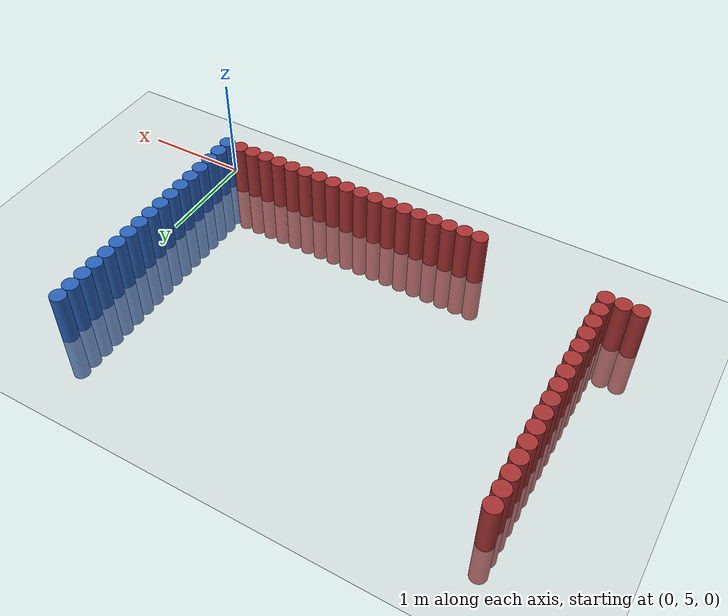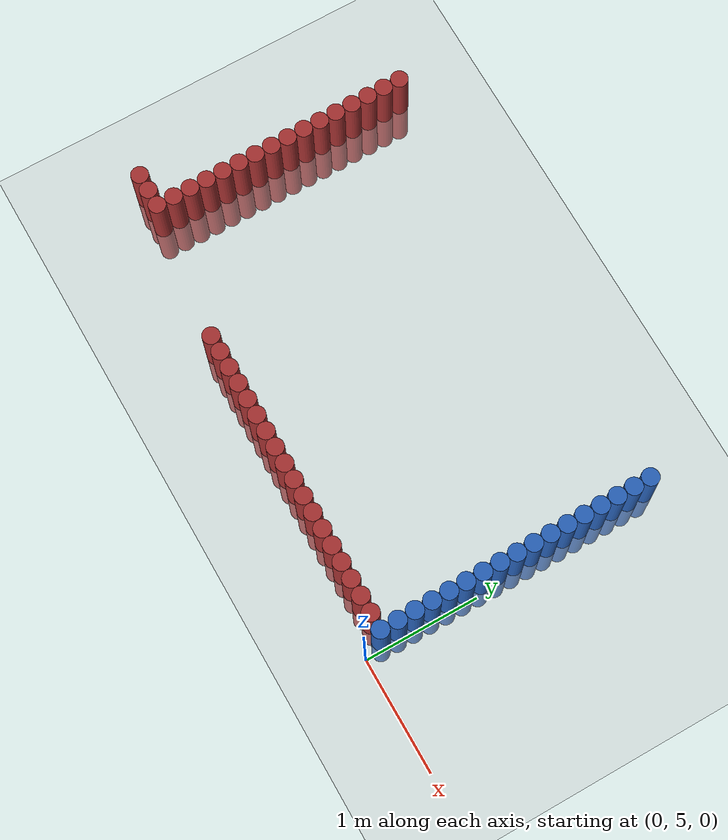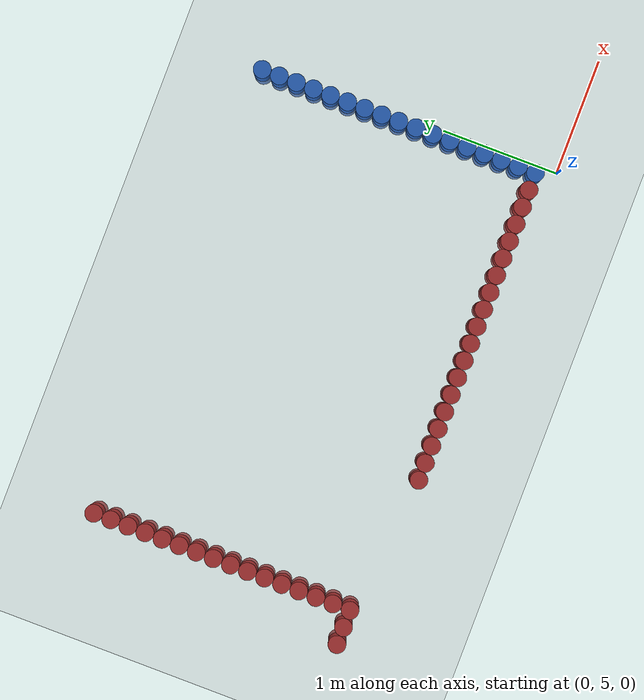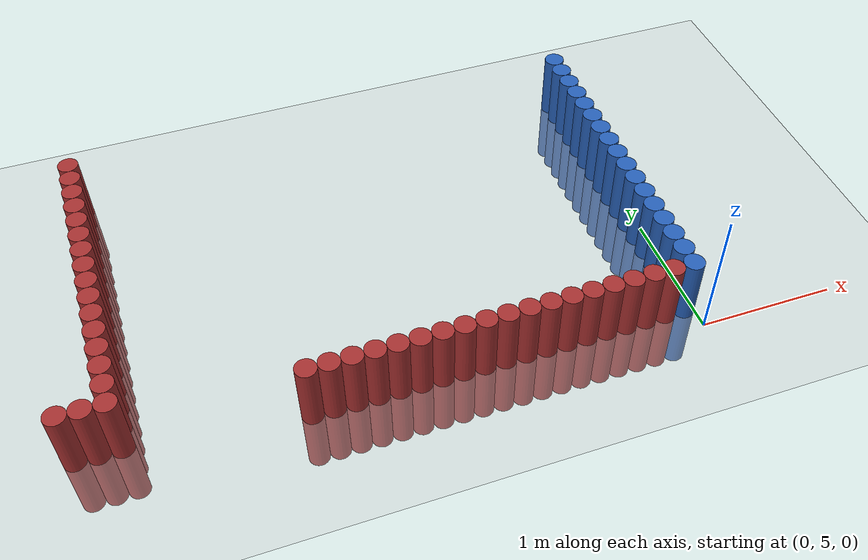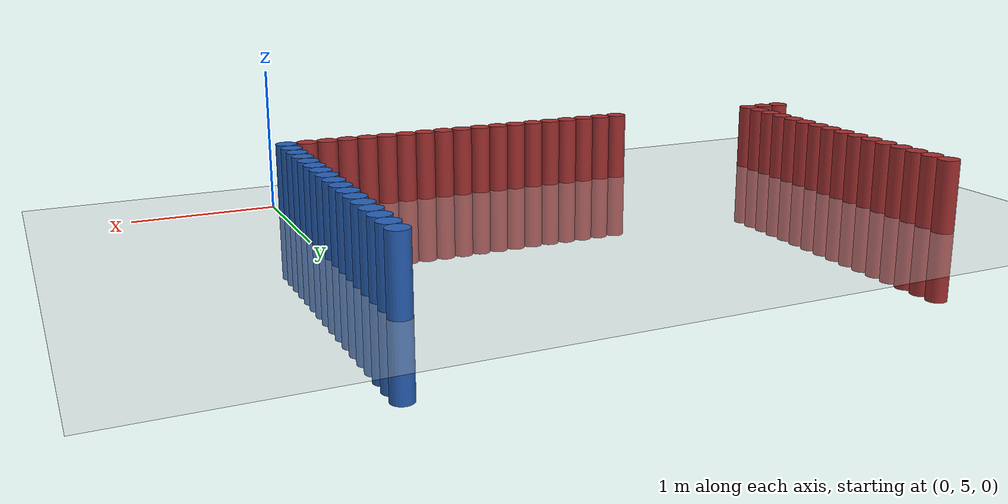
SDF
<sdf version="1.6">
 <world name="default">
  <model name="ground_plane">
   <static>1</static>
   <link name="link">
    <collision name="collision">
     <geometry><plane><normal>0 0 1</normal><size>100 100</size></plane></geometry>
     <surface><friction><ode><mu>100</mu><mu2>50</mu2></ode></friction></surface>
    </collision>
    <visual name="visual">
     <cast_shadows>0</cast_shadows>
     <geometry><plane><normal>0 0 1</normal><size>100 100</size></plane></geometry>
     <material>
      <script><uri>file://media/materials/scripts/gazebo.material</uri><name>Gazebo/Grey</name></script>
     </material>
    </visual>
   </link>
  </model>
  <model name="unit_cylinder_266">
   <static>1</static>
   <pose>-4.275000 5.325000 0.000000 0.000000 0.000000 0.000000</pose>
   <link name="link">
    <inertial>
     <mass>1</mass>
     <inertia><ixx>0.145833</ixx><ixy>0</ixy><ixz>0</ixz><iyy>0.145833</iyy><iyz>0</iyz><izz>0.125</izz></inertia>
    </inertial>
    <collision name="collision">
     <geometry><cylinder><radius>0.075000</radius><length>1</length></cylinder></geometry>
    </collision>
    <visual name="visual">
     <geometry><cylinder><radius>0.075000</radius><length>1</length></cylinder></geometry>
     <material>
      <ambient>0.648000 0.192000 0.192000 1</ambient>
      <diffuse>0.648000 0.192000 0.192000 1</diffuse>
     </material>
     <material>
      <script><name>Gazebo/Grey</name><uri>file://media/materials/scripts/gazebo.material</uri></script>
     </material>
    </visual>
   </link>
  </model>
  <model name="unit_cylinder_270">
   <static>1</static>
   <pose>-4.125000 5.325000 0.000000 0.000000 0.000000 0.000000</pose>
   <link name="link">
    <inertial>
     <mass>1</mass>
     <inertia><ixx>0.145833</ixx><ixy>0</ixy><ixz>0</ixz><iyy>0.145833</iyy><iyz>0</iyz><izz>0.125</izz></inertia>
    </inertial>
    <collision name="collision">
     <geometry><cylinder><radius>0.075000</radius><length>1</length></cylinder></geometry>
    </collision>
    <visual name="visual">
     <geometry><cylinder><radius>0.075000</radius><length>1</length></cylinder></geometry>
     <material>
      <ambient>0.648000 0.192000 0.192000 1</ambient>
      <diffuse>0.648000 0.192000 0.192000 1</diffuse>
     </material>
     <material>
      <script><name>Gazebo/Grey</name><uri>file://media/materials/scripts/gazebo.material</uri></script>
     </material>
    </visual>
   </link>
  </model>
  <model name="unit_cylinder_274">
   <static>1</static>
   <pose>-3.975000 5.325000 0.000000 0.000000 0.000000 0.000000</pose>
   <link name="link">
    <inertial>
     <mass>1</mass>
     <inertia><ixx>0.145833</ixx><ixy>0</ixy><ixz>0</ixz><iyy>0.145833</iyy><iyz>0</iyz><izz>0.125</izz></inertia>
    </inertial>
    <collision name="collision">
     <geometry><cylinder><radius>0.075000</radius><length>1</length></cylinder></geometry>
    </collision>
    <visual name="visual">
     <geometry><cylinder><radius>0.075000</radius><length>1</length></cylinder></geometry>
     <material>
      <ambient>0.648000 0.192000 0.192000 1</ambient>
      <diffuse>0.648000 0.192000 0.192000 1</diffuse>
     </material>
     <material>
      <script><name>Gazebo/Grey</name><uri>file://media/materials/scripts/gazebo.material</uri></script>
     </material>
    </visual>
   </link>
  </model>
  <model name="unit_cylinder_275">
   <static>1</static>
   <pose>-3.975000 5.475000 0.000000 0.000000 0.000000 0.000000</pose>
   <link name="link">
    <inertial>
     <mass>1</mass>
     <inertia><ixx>0.145833</ixx><ixy>0</ixy><ixz>0</ixz><iyy>0.145833</iyy><iyz>0</iyz><izz>0.125</izz></inertia>
    </inertial>
    <collision name="collision">
     <geometry><cylinder><radius>0.075000</radius><length>1</length></cylinder></geometry>
    </collision>
    <visual name="visual">
     <geometry><cylinder><radius>0.075000</radius><length>1</length></cylinder></geometry>
     <material>
      <ambient>0.648000 0.192000 0.192000 1</ambient>
      <diffuse>0.648000 0.192000 0.192000 1</diffuse>
     </material>
     <material>
      <script><name>Gazebo/Grey</name><uri>file://media/materials/scripts/gazebo.material</uri></script>
     </material>
    </visual>
   </link>
  </model>
  <model name="unit_cylinder_276">
   <static>1</static>
   <pose>-3.975000 5.625000 0.000000 0.000000 0.000000 0.000000</pose>
   <link name="link">
    <inertial>
     <mass>1</mass>
     <inertia><ixx>0.145833</ixx><ixy>0</ixy><ixz>0</ixz><iyy>0.145833</iyy><iyz>0</iyz><izz>0.125</izz></inertia>
    </inertial>
    <collision name="collision">
     <geometry><cylinder><radius>0.075000</radius><length>1</length></cylinder></geometry>
    </collision>
    <visual name="visual">
     <geometry><cylinder><radius>0.075000</radius><length>1</length></cylinder></geometry>
     <material>
      <ambient>0.648000 0.192000 0.192000 1</ambient>
      <diffuse>0.648000 0.192000 0.192000 1</diffuse>
     </material>
     <material>
      <script><name>Gazebo/Grey</name><uri>file://media/materials/scripts/gazebo.material</uri></script>
     </material>
    </visual>
   </link>
  </model>
  <model name="unit_cylinder_277">
   <static>1</static>
   <pose>-3.975000 5.775000 0.000000 0.000000 0.000000 0.000000</pose>
   <link name="link">
    <inertial>
     <mass>1</mass>
     <inertia><ixx>0.145833</ixx><ixy>0</ixy><ixz>0</ixz><iyy>0.145833</iyy><iyz>0</iyz><izz>0.125</izz></inertia>
    </inertial>
    <collision name="collision">
     <geometry><cylinder><radius>0.075000</radius><length>1</length></cylinder></geometry>
    </collision>
    <visual name="visual">
     <geometry><cylinder><radius>0.075000</radius><length>1</length></cylinder></geometry>
     <material>
      <ambient>0.648000 0.192000 0.192000 1</ambient>
      <diffuse>0.648000 0.192000 0.192000 1</diffuse>
     </material>
     <material>
      <script><name>Gazebo/Grey</name><uri>file://media/materials/scripts/gazebo.material</uri></script>
     </material>
    </visual>
   </link>
  </model>
  <model name="unit_cylinder_278">
   <static>1</static>
   <pose>-3.975000 5.925000 0.000000 0.000000 0.000000 0.000000</pose>
   <link name="link">
    <inertial>
     <mass>1</mass>
     <inertia><ixx>0.145833</ixx><ixy>0</ixy><ixz>0</ixz><iyy>0.145833</iyy><iyz>0</iyz><izz>0.125</izz></inertia>
    </inertial>
    <collision name="collision">
     <geometry><cylinder><radius>0.075000</radius><length>1</length></cylinder></geometry>
    </collision>
    <visual name="visual">
     <geometry><cylinder><radius>0.075000</radius><length>1</length></cylinder></geometry>
     <material>
      <ambient>0.648000 0.192000 0.192000 1</ambient>
      <diffuse>0.648000 0.192000 0.192000 1</diffuse>
     </material>
     <material>
      <script><name>Gazebo/Grey</name><uri>file://media/materials/scripts/gazebo.material</uri></script>
     </material>
    </visual>
   </link>
  </model>
  <model name="unit_cylinder_279">
   <static>1</static>
   <pose>-3.975000 6.075000 0.000000 0.000000 0.000000 0.000000</pose>
   <link name="link">
    <inertial>
     <mass>1</mass>
     <inertia><ixx>0.145833</ixx><ixy>0</ixy><ixz>0</ixz><iyy>0.145833</iyy><iyz>0</iyz><izz>0.125</izz></inertia>
    </inertial>
    <collision name="collision">
     <geometry><cylinder><radius>0.075000</radius><length>1</length></cylinder></geometry>
    </collision>
    <visual name="visual">
     <geometry><cylinder><radius>0.075000</radius><length>1</length></cylinder></geometry>
     <material>
      <ambient>0.648000 0.192000 0.192000 1</ambient>
      <diffuse>0.648000 0.192000 0.192000 1</diffuse>
     </material>
     <material>
      <script><name>Gazebo/Grey</name><uri>file://media/materials/scripts/gazebo.material</uri></script>
     </material>
    </visual>
   </link>
  </model>
  <model name="unit_cylinder_280">
   <static>1</static>
   <pose>-3.975000 6.225000 0.000000 0.000000 0.000000 0.000000</pose>
   <link name="link">
    <inertial>
     <mass>1</mass>
     <inertia><ixx>0.145833</ixx><ixy>0</ixy><ixz>0</ixz><iyy>0.145833</iyy><iyz>0</iyz><izz>0.125</izz></inertia>
    </inertial>
    <collision name="collision">
     <geometry><cylinder><radius>0.075000</radius><length>1</length></cylinder></geometry>
    </collision>
    <visual name="visual">
     <geometry><cylinder><radius>0.075000</radius><length>1</length></cylinder></geometry>
     <material>
      <ambient>0.648000 0.192000 0.192000 1</ambient>
      <diffuse>0.648000 0.192000 0.192000 1</diffuse>
     </material>
     <material>
      <script><name>Gazebo/Grey</name><uri>file://media/materials/scripts/gazebo.material</uri></script>
     </material>
    </visual>
   </link>
  </model>
  <model name="unit_cylinder_281">
   <static>1</static>
   <pose>-3.975000 6.375000 0.000000 0.000000 0.000000 0.000000</pose>
   <link name="link">
    <inertial>
     <mass>1</mass>
     <inertia><ixx>0.145833</ixx><ixy>0</ixy><ixz>0</ixz><iyy>0.145833</iyy><iyz>0</iyz><izz>0.125</izz></inertia>
    </inertial>
    <collision name="collision">
     <geometry><cylinder><radius>0.075000</radius><length>1</length></cylinder></geometry>
    </collision>
    <visual name="visual">
     <geometry><cylinder><radius>0.075000</radius><length>1</length></cylinder></geometry>
     <material>
      <ambient>0.648000 0.192000 0.192000 1</ambient>
      <diffuse>0.648000 0.192000 0.192000 1</diffuse>
     </material>
     <material>
      <script><name>Gazebo/Grey</name><uri>file://media/materials/scripts/gazebo.material</uri></script>
     </material>
    </visual>
   </link>
  </model>
  <model name="unit_cylinder_282">
   <static>1</static>
   <pose>-3.975000 6.525000 0.000000 0.000000 0.000000 0.000000</pose>
   <link name="link">
    <inertial>
     <mass>1</mass>
     <inertia><ixx>0.145833</ixx><ixy>0</ixy><ixz>0</ixz><iyy>0.145833</iyy><iyz>0</iyz><izz>0.125</izz></inertia>
    </inertial>
    <collision name="collision">
     <geometry><cylinder><radius>0.075000</radius><length>1</length></cylinder></geometry>
    </collision>
    <visual name="visual">
     <geometry><cylinder><radius>0.075000</radius><length>1</length></cylinder></geometry>
     <material>
      <ambient>0.648000 0.192000 0.192000 1</ambient>
      <diffuse>0.648000 0.192000 0.192000 1</diffuse>
     </material>
     <material>
      <script><name>Gazebo/Grey</name><uri>file://media/materials/scripts/gazebo.material</uri></script>
     </material>
    </visual>
   </link>
  </model>
  <model name="unit_cylinder_283">
   <static>1</static>
   <pose>-3.975000 6.675000 0.000000 0.000000 0.000000 0.000000</pose>
   <link name="link">
    <inertial>
     <mass>1</mass>
     <inertia><ixx>0.145833</ixx><ixy>0</ixy><ixz>0</ixz><iyy>0.145833</iyy><iyz>0</iyz><izz>0.125</izz></inertia>
    </inertial>
    <collision name="collision">
     <geometry><cylinder><radius>0.075000</radius><length>1</length></cylinder></geometry>
    </collision>
    <visual name="visual">
     <geometry><cylinder><radius>0.075000</radius><length>1</length></cylinder></geometry>
     <material>
      <ambient>0.648000 0.192000 0.192000 1</ambient>
      <diffuse>0.648000 0.192000 0.192000 1</diffuse>
     </material>
     <material>
      <script><name>Gazebo/Grey</name><uri>file://media/materials/scripts/gazebo.material</uri></script>
     </material>
    </visual>
   </link>
  </model>
  <model name="unit_cylinder_284">
   <static>1</static>
   <pose>-3.975000 6.825000 0.000000 0.000000 0.000000 0.000000</pose>
   <link name="link">
    <inertial>
     <mass>1</mass>
     <inertia><ixx>0.145833</ixx><ixy>0</ixy><ixz>0</ixz><iyy>0.145833</iyy><iyz>0</iyz><izz>0.125</izz></inertia>
    </inertial>
    <collision name="collision">
     <geometry><cylinder><radius>0.075000</radius><length>1</length></cylinder></geometry>
    </collision>
    <visual name="visual">
     <geometry><cylinder><radius>0.075000</radius><length>1</length></cylinder></geometry>
     <material>
      <ambient>0.648000 0.192000 0.192000 1</ambient>
      <diffuse>0.648000 0.192000 0.192000 1</diffuse>
     </material>
     <material>
      <script><name>Gazebo/Grey</name><uri>file://media/materials/scripts/gazebo.material</uri></script>
     </material>
    </visual>
   </link>
  </model>
  <model name="unit_cylinder_285">
   <static>1</static>
   <pose>-3.975000 6.975000 0.000000 0.000000 0.000000 0.000000</pose>
   <link name="link">
    <inertial>
     <mass>1</mass>
     <inertia><ixx>0.145833</ixx><ixy>0</ixy><ixz>0</ixz><iyy>0.145833</iyy><iyz>0</iyz><izz>0.125</izz></inertia>
    </inertial>
    <collision name="collision">
     <geometry><cylinder><radius>0.075000</radius><length>1</length></cylinder></geometry>
    </collision>
    <visual name="visual">
     <geometry><cylinder><radius>0.075000</radius><length>1</length></cylinder></geometry>
     <material>
      <ambient>0.648000 0.192000 0.192000 1</ambient>
      <diffuse>0.648000 0.192000 0.192000 1</diffuse>
     </material>
     <material>
      <script><name>Gazebo/Grey</name><uri>file://media/materials/scripts/gazebo.material</uri></script>
     </material>
    </visual>
   </link>
  </model>
  <model name="unit_cylinder_286">
   <static>1</static>
   <pose>-3.975000 7.125000 0.000000 0.000000 0.000000 0.000000</pose>
   <link name="link">
    <inertial>
     <mass>1</mass>
     <inertia><ixx>0.145833</ixx><ixy>0</ixy><ixz>0</ixz><iyy>0.145833</iyy><iyz>0</iyz><izz>0.125</izz></inertia>
    </inertial>
    <collision name="collision">
     <geometry><cylinder><radius>0.075000</radius><length>1</length></cylinder></geometry>
    </collision>
    <visual name="visual">
     <geometry><cylinder><radius>0.075000</radius><length>1</length></cylinder></geometry>
     <material>
      <ambient>0.648000 0.192000 0.192000 1</ambient>
      <diffuse>0.648000 0.192000 0.192000 1</diffuse>
     </material>
     <material>
      <script><name>Gazebo/Grey</name><uri>file://media/materials/scripts/gazebo.material</uri></script>
     </material>
    </visual>
   </link>
  </model>
  <model name="unit_cylinder_287">
   <static>1</static>
   <pose>-3.975000 7.275000 0.000000 0.000000 0.000000 0.000000</pose>
   <link name="link">
    <inertial>
     <mass>1</mass>
     <inertia><ixx>0.145833</ixx><ixy>0</ixy><ixz>0</ixz><iyy>0.145833</iyy><iyz>0</iyz><izz>0.125</izz></inertia>
    </inertial>
    <collision name="collision">
     <geometry><cylinder><radius>0.075000</radius><length>1</length></cylinder></geometry>
    </collision>
    <visual name="visual">
     <geometry><cylinder><radius>0.075000</radius><length>1</length></cylinder></geometry>
     <material>
      <ambient>0.648000 0.192000 0.192000 1</ambient>
      <diffuse>0.648000 0.192000 0.192000 1</diffuse>
     </material>
     <material>
      <script><name>Gazebo/Grey</name><uri>file://media/materials/scripts/gazebo.material</uri></script>
     </material>
    </visual>
   </link>
  </model>
  <model name="unit_cylinder_288">
   <static>1</static>
   <pose>-3.975000 7.425000 0.000000 0.000000 0.000000 0.000000</pose>
   <link name="link">
    <inertial>
     <mass>1</mass>
     <inertia><ixx>0.145833</ixx><ixy>0</ixy><ixz>0</ixz><iyy>0.145833</iyy><iyz>0</iyz><izz>0.125</izz></inertia>
    </inertial>
    <collision name="collision">
     <geometry><cylinder><radius>0.075000</radius><length>1</length></cylinder></geometry>
    </collision>
    <visual name="visual">
     <geometry><cylinder><radius>0.075000</radius><length>1</length></cylinder></geometry>
     <material>
      <ambient>0.648000 0.192000 0.192000 1</ambient>
      <diffuse>0.648000 0.192000 0.192000 1</diffuse>
     </material>
     <material>
      <script><name>Gazebo/Grey</name><uri>file://media/materials/scripts/gazebo.material</uri></script>
     </material>
    </visual>
   </link>
  </model>
  <model name="unit_cylinder_289">
   <static>1</static>
   <pose>-3.975000 7.575000 0.000000 0.000000 0.000000 0.000000</pose>
   <link name="link">
    <inertial>
     <mass>1</mass>
     <inertia><ixx>0.145833</ixx><ixy>0</ixy><ixz>0</ixz><iyy>0.145833</iyy><iyz>0</iyz><izz>0.125</izz></inertia>
    </inertial>
    <collision name="collision">
     <geometry><cylinder><radius>0.075000</radius><length>1</length></cylinder></geometry>
    </collision>
    <visual name="visual">
     <geometry><cylinder><radius>0.075000</radius><length>1</length></cylinder></geometry>
     <material>
      <ambient>0.648000 0.192000 0.192000 1</ambient>
      <diffuse>0.648000 0.192000 0.192000 1</diffuse>
     </material>
     <material>
      <script><name>Gazebo/Grey</name><uri>file://media/materials/scripts/gazebo.material</uri></script>
     </material>
    </visual>
   </link>
  </model>
  <model name="unit_cylinder_309">
   <static>1</static>
   <pose>-2.775000 5.175000 0.000000 0.000000 0.000000 0.000000</pose>
   <link name="link">
    <inertial>
     <mass>1</mass>
     <inertia><ixx>0.145833</ixx><ixy>0</ixy><ixz>0</ixz><iyy>0.145833</iyy><iyz>0</iyz><izz>0.125</izz></inertia>
    </inertial>
    <collision name="collision">
     <geometry><cylinder><radius>0.075000</radius><length>1</length></cylinder></geometry>
    </collision>
    <visual name="visual">
     <geometry><cylinder><radius>0.075000</radius><length>1</length></cylinder></geometry>
     <material>
      <ambient>0.648000 0.192000 0.192000 1</ambient>
      <diffuse>0.648000 0.192000 0.192000 1</diffuse>
     </material>
     <material>
      <script><name>Gazebo/Grey</name><uri>file://media/materials/scripts/gazebo.material</uri></script>
     </material>
    </visual>
   </link>
  </model>
  <model name="unit_cylinder_311">
   <static>1</static>
   <pose>-2.625000 5.175000 0.000000 0.000000 0.000000 0.000000</pose>
   <link name="link">
    <inertial>
     <mass>1</mass>
     <inertia><ixx>0.145833</ixx><ixy>0</ixy><ixz>0</ixz><iyy>0.145833</iyy><iyz>0</iyz><izz>0.125</izz></inertia>
    </inertial>
    <collision name="collision">
     <geometry><cylinder><radius>0.075000</radius><length>1</length></cylinder></geometry>
    </collision>
    <visual name="visual">
     <geometry><cylinder><radius>0.075000</radius><length>1</length></cylinder></geometry>
     <material>
      <ambient>0.648000 0.192000 0.192000 1</ambient>
      <diffuse>0.648000 0.192000 0.192000 1</diffuse>
     </material>
     <material>
      <script><name>Gazebo/Grey</name><uri>file://media/materials/scripts/gazebo.material</uri></script>
     </material>
    </visual>
   </link>
  </model>
  <model name="unit_cylinder_313">
   <static>1</static>
   <pose>-2.475000 5.175000 0.000000 0.000000 0.000000 0.000000</pose>
   <link name="link">
    <inertial>
     <mass>1</mass>
     <inertia><ixx>0.145833</ixx><ixy>0</ixy><ixz>0</ixz><iyy>0.145833</iyy><iyz>0</iyz><izz>0.125</izz></inertia>
    </inertial>
    <collision name="collision">
     <geometry><cylinder><radius>0.075000</radius><length>1</length></cylinder></geometry>
    </collision>
    <visual name="visual">
     <geometry><cylinder><radius>0.075000</radius><length>1</length></cylinder></geometry>
     <material>
      <ambient>0.648000 0.192000 0.192000 1</ambient>
      <diffuse>0.648000 0.192000 0.192000 1</diffuse>
     </material>
     <material>
      <script><name>Gazebo/Grey</name><uri>file://media/materials/scripts/gazebo.material</uri></script>
     </material>
    </visual>
   </link>
  </model>
  <model name="unit_cylinder_315">
   <static>1</static>
   <pose>-2.325000 5.175000 0.000000 0.000000 0.000000 0.000000</pose>
   <link name="link">
    <inertial>
     <mass>1</mass>
     <inertia><ixx>0.145833</ixx><ixy>0</ixy><ixz>0</ixz><iyy>0.145833</iyy><iyz>0</iyz><izz>0.125</izz></inertia>
    </inertial>
    <collision name="collision">
     <geometry><cylinder><radius>0.075000</radius><length>1</length></cylinder></geometry>
    </collision>
    <visual name="visual">
     <geometry><cylinder><radius>0.075000</radius><length>1</length></cylinder></geometry>
     <material>
      <ambient>0.648000 0.192000 0.192000 1</ambient>
      <diffuse>0.648000 0.192000 0.192000 1</diffuse>
     </material>
     <material>
      <script><name>Gazebo/Grey</name><uri>file://media/materials/scripts/gazebo.material</uri></script>
     </material>
    </visual>
   </link>
  </model>
  <model name="unit_cylinder_317">
   <static>1</static>
   <pose>-2.175000 5.175000 0.000000 0.000000 0.000000 0.000000</pose>
   <link name="link">
    <inertial>
     <mass>1</mass>
     <inertia><ixx>0.145833</ixx><ixy>0</ixy><ixz>0</ixz><iyy>0.145833</iyy><iyz>0</iyz><izz>0.125</izz></inertia>
    </inertial>
    <collision name="collision">
     <geometry><cylinder><radius>0.075000</radius><length>1</length></cylinder></geometry>
    </collision>
    <visual name="visual">
     <geometry><cylinder><radius>0.075000</radius><length>1</length></cylinder></geometry>
     <material>
      <ambient>0.648000 0.192000 0.192000 1</ambient>
      <diffuse>0.648000 0.192000 0.192000 1</diffuse>
     </material>
     <material>
      <script><name>Gazebo/Grey</name><uri>file://media/materials/scripts/gazebo.material</uri></script>
     </material>
    </visual>
   </link>
  </model>
  <model name="unit_cylinder_319">
   <static>1</static>
   <pose>-2.025000 5.175000 0.000000 0.000000 0.000000 0.000000</pose>
   <link name="link">
    <inertial>
     <mass>1</mass>
     <inertia><ixx>0.145833</ixx><ixy>0</ixy><ixz>0</ixz><iyy>0.145833</iyy><iyz>0</iyz><izz>0.125</izz></inertia>
    </inertial>
    <collision name="collision">
     <geometry><cylinder><radius>0.075000</radius><length>1</length></cylinder></geometry>
    </collision>
    <visual name="visual">
     <geometry><cylinder><radius>0.075000</radius><length>1</length></cylinder></geometry>
     <material>
      <ambient>0.648000 0.192000 0.192000 1</ambient>
      <diffuse>0.648000 0.192000 0.192000 1</diffuse>
     </material>
     <material>
      <script><name>Gazebo/Grey</name><uri>file://media/materials/scripts/gazebo.material</uri></script>
     </material>
    </visual>
   </link>
  </model>
  <model name="unit_cylinder_321">
   <static>1</static>
   <pose>-1.875000 5.175000 0.000000 0.000000 0.000000 0.000000</pose>
   <link name="link">
    <inertial>
     <mass>1</mass>
     <inertia><ixx>0.145833</ixx><ixy>0</ixy><ixz>0</ixz><iyy>0.145833</iyy><iyz>0</iyz><izz>0.125</izz></inertia>
    </inertial>
    <collision name="collision">
     <geometry><cylinder><radius>0.075000</radius><length>1</length></cylinder></geometry>
    </collision>
    <visual name="visual">
     <geometry><cylinder><radius>0.075000</radius><length>1</length></cylinder></geometry>
     <material>
      <ambient>0.648000 0.192000 0.192000 1</ambient>
      <diffuse>0.648000 0.192000 0.192000 1</diffuse>
     </material>
     <material>
      <script><name>Gazebo/Grey</name><uri>file://media/materials/scripts/gazebo.material</uri></script>
     </material>
    </visual>
   </link>
  </model>
  <model name="unit_cylinder_323">
   <static>1</static>
   <pose>-1.725000 5.175000 0.000000 0.000000 0.000000 0.000000</pose>
   <link name="link">
    <inertial>
     <mass>1</mass>
     <inertia><ixx>0.145833</ixx><ixy>0</ixy><ixz>0</ixz><iyy>0.145833</iyy><iyz>0</iyz><izz>0.125</izz></inertia>
    </inertial>
    <collision name="collision">
     <geometry><cylinder><radius>0.075000</radius><length>1</length></cylinder></geometry>
    </collision>
    <visual name="visual">
     <geometry><cylinder><radius>0.075000</radius><length>1</length></cylinder></geometry>
     <material>
      <ambient>0.648000 0.192000 0.192000 1</ambient>
      <diffuse>0.648000 0.192000 0.192000 1</diffuse>
     </material>
     <material>
      <script><name>Gazebo/Grey</name><uri>file://media/materials/scripts/gazebo.material</uri></script>
     </material>
    </visual>
   </link>
  </model>
  <model name="unit_cylinder_325">
   <static>1</static>
   <pose>-1.575000 5.175000 0.000000 0.000000 0.000000 0.000000</pose>
   <link name="link">
    <inertial>
     <mass>1</mass>
     <inertia><ixx>0.145833</ixx><ixy>0</ixy><ixz>0</ixz><iyy>0.145833</iyy><iyz>0</iyz><izz>0.125</izz></inertia>
    </inertial>
    <collision name="collision">
     <geometry><cylinder><radius>0.075000</radius><length>1</length></cylinder></geometry>
    </collision>
    <visual name="visual">
     <geometry><cylinder><radius>0.075000</radius><length>1</length></cylinder></geometry>
     <material>
      <ambient>0.648000 0.192000 0.192000 1</ambient>
      <diffuse>0.648000 0.192000 0.192000 1</diffuse>
     </material>
     <material>
      <script><name>Gazebo/Grey</name><uri>file://media/materials/scripts/gazebo.material</uri></script>
     </material>
    </visual>
   </link>
  </model>
  <model name="unit_cylinder_327">
   <static>1</static>
   <pose>-1.425000 5.175000 0.000000 0.000000 0.000000 0.000000</pose>
   <link name="link">
    <inertial>
     <mass>1</mass>
     <inertia><ixx>0.145833</ixx><ixy>0</ixy><ixz>0</ixz><iyy>0.145833</iyy><iyz>0</iyz><izz>0.125</izz></inertia>
    </inertial>
    <collision name="collision">
     <geometry><cylinder><radius>0.075000</radius><length>1</length></cylinder></geometry>
    </collision>
    <visual name="visual">
     <geometry><cylinder><radius>0.075000</radius><length>1</length></cylinder></geometry>
     <material>
      <ambient>0.648000 0.192000 0.192000 1</ambient>
      <diffuse>0.648000 0.192000 0.192000 1</diffuse>
     </material>
     <material>
      <script><name>Gazebo/Grey</name><uri>file://media/materials/scripts/gazebo.material</uri></script>
     </material>
    </visual>
   </link>
  </model>
  <model name="unit_cylinder_329">
   <static>1</static>
   <pose>-1.275000 5.175000 0.000000 0.000000 0.000000 0.000000</pose>
   <link name="link">
    <inertial>
     <mass>1</mass>
     <inertia><ixx>0.145833</ixx><ixy>0</ixy><ixz>0</ixz><iyy>0.145833</iyy><iyz>0</iyz><izz>0.125</izz></inertia>
    </inertial>
    <collision name="collision">
     <geometry><cylinder><radius>0.075000</radius><length>1</length></cylinder></geometry>
    </collision>
    <visual name="visual">
     <geometry><cylinder><radius>0.075000</radius><length>1</length></cylinder></geometry>
     <material>
      <ambient>0.648000 0.192000 0.192000 1</ambient>
      <diffuse>0.648000 0.192000 0.192000 1</diffuse>
     </material>
     <material>
      <script><name>Gazebo/Grey</name><uri>file://media/materials/scripts/gazebo.material</uri></script>
     </material>
    </visual>
   </link>
  </model>
  <model name="unit_cylinder_331">
   <static>1</static>
   <pose>-1.125000 5.175000 0.000000 0.000000 0.000000 0.000000</pose>
   <link name="link">
    <inertial>
     <mass>1</mass>
     <inertia><ixx>0.145833</ixx><ixy>0</ixy><ixz>0</ixz><iyy>0.145833</iyy><iyz>0</iyz><izz>0.125</izz></inertia>
    </inertial>
    <collision name="collision">
     <geometry><cylinder><radius>0.075000</radius><length>1</length></cylinder></geometry>
    </collision>
    <visual name="visual">
     <geometry><cylinder><radius>0.075000</radius><length>1</length></cylinder></geometry>
     <material>
      <ambient>0.648000 0.192000 0.192000 1</ambient>
      <diffuse>0.648000 0.192000 0.192000 1</diffuse>
     </material>
     <material>
      <script><name>Gazebo/Grey</name><uri>file://media/materials/scripts/gazebo.material</uri></script>
     </material>
    </visual>
   </link>
  </model>
  <model name="unit_cylinder_333">
   <static>1</static>
   <pose>-0.975000 5.175000 0.000000 0.000000 0.000000 0.000000</pose>
   <link name="link">
    <inertial>
     <mass>1</mass>
     <inertia><ixx>0.145833</ixx><ixy>0</ixy><ixz>0</ixz><iyy>0.145833</iyy><iyz>0</iyz><izz>0.125</izz></inertia>
    </inertial>
    <collision name="collision">
     <geometry><cylinder><radius>0.075000</radius><length>1</length></cylinder></geometry>
    </collision>
    <visual name="visual">
     <geometry><cylinder><radius>0.075000</radius><length>1</length></cylinder></geometry>
     <material>
      <ambient>0.648000 0.192000 0.192000 1</ambient>
      <diffuse>0.648000 0.192000 0.192000 1</diffuse>
     </material>
     <material>
      <script><name>Gazebo/Grey</name><uri>file://media/materials/scripts/gazebo.material</uri></script>
     </material>
    </visual>
   </link>
  </model>
  <model name="unit_cylinder_335">
   <static>1</static>
   <pose>-0.825000 5.175000 0.000000 0.000000 0.000000 0.000000</pose>
   <link name="link">
    <inertial>
     <mass>1</mass>
     <inertia><ixx>0.145833</ixx><ixy>0</ixy><ixz>0</ixz><iyy>0.145833</iyy><iyz>0</iyz><izz>0.125</izz></inertia>
    </inertial>
    <collision name="collision">
     <geometry><cylinder><radius>0.075000</radius><length>1</length></cylinder></geometry>
    </collision>
    <visual name="visual">
     <geometry><cylinder><radius>0.075000</radius><length>1</length></cylinder></geometry>
     <material>
      <ambient>0.648000 0.192000 0.192000 1</ambient>
      <diffuse>0.648000 0.192000 0.192000 1</diffuse>
     </material>
     <material>
      <script><name>Gazebo/Grey</name><uri>file://media/materials/scripts/gazebo.material</uri></script>
     </material>
    </visual>
   </link>
  </model>
  <model name="unit_cylinder_337">
   <static>1</static>
   <pose>-0.675000 5.175000 0.000000 0.000000 0.000000 0.000000</pose>
   <link name="link">
    <inertial>
     <mass>1</mass>
     <inertia><ixx>0.145833</ixx><ixy>0</ixy><ixz>0</ixz><iyy>0.145833</iyy><iyz>0</iyz><izz>0.125</izz></inertia>
    </inertial>
    <collision name="collision">
     <geometry><cylinder><radius>0.075000</radius><length>1</length></cylinder></geometry>
    </collision>
    <visual name="visual">
     <geometry><cylinder><radius>0.075000</radius><length>1</length></cylinder></geometry>
     <material>
      <ambient>0.648000 0.192000 0.192000 1</ambient>
      <diffuse>0.648000 0.192000 0.192000 1</diffuse>
     </material>
     <material>
      <script><name>Gazebo/Grey</name><uri>file://media/materials/scripts/gazebo.material</uri></script>
     </material>
    </visual>
   </link>
  </model>
  <model name="unit_cylinder_339">
   <static>1</static>
   <pose>-0.525000 5.175000 0.000000 0.000000 0.000000 0.000000</pose>
   <link name="link">
    <inertial>
     <mass>1</mass>
     <inertia><ixx>0.145833</ixx><ixy>0</ixy><ixz>0</ixz><iyy>0.145833</iyy><iyz>0</iyz><izz>0.125</izz></inertia>
    </inertial>
    <collision name="collision">
     <geometry><cylinder><radius>0.075000</radius><length>1</length></cylinder></geometry>
    </collision>
    <visual name="visual">
     <geometry><cylinder><radius>0.075000</radius><length>1</length></cylinder></geometry>
     <material>
      <ambient>0.648000 0.192000 0.192000 1</ambient>
      <diffuse>0.648000 0.192000 0.192000 1</diffuse>
     </material>
     <material>
      <script><name>Gazebo/Grey</name><uri>file://media/materials/scripts/gazebo.material</uri></script>
     </material>
    </visual>
   </link>
  </model>
  <model name="unit_cylinder_341">
   <static>1</static>
   <pose>-0.375000 5.175000 0.000000 0.000000 0.000000 0.000000</pose>
   <link name="link">
    <inertial>
     <mass>1</mass>
     <inertia><ixx>0.145833</ixx><ixy>0</ixy><ixz>0</ixz><iyy>0.145833</iyy><iyz>0</iyz><izz>0.125</izz></inertia>
    </inertial>
    <collision name="collision">
     <geometry><cylinder><radius>0.075000</radius><length>1</length></cylinder></geometry>
    </collision>
    <visual name="visual">
     <geometry><cylinder><radius>0.075000</radius><length>1</length></cylinder></geometry>
     <material>
      <ambient>0.648000 0.192000 0.192000 1</ambient>
      <diffuse>0.648000 0.192000 0.192000 1</diffuse>
     </material>
     <material>
      <script><name>Gazebo/Grey</name><uri>file://media/materials/scripts/gazebo.material</uri></script>
     </material>
    </visual>
   </link>
  </model>
  <model name="unit_cylinder_343">
   <static>1</static>
   <pose>-0.225000 5.175000 0.000000 0.000000 0.000000 0.000000</pose>
   <link name="link">
    <inertial>
     <mass>1</mass>
     <inertia><ixx>0.145833</ixx><ixy>0</ixy><ixz>0</ixz><iyy>0.145833</iyy><iyz>0</iyz><izz>0.125</izz></inertia>
    </inertial>
    <collision name="collision">
     <geometry><cylinder><radius>0.075000</radius><length>1</length></cylinder></geometry>
    </collision>
    <visual name="visual">
     <geometry><cylinder><radius>0.075000</radius><length>1</length></cylinder></geometry>
     <material>
      <ambient>0.648000 0.192000 0.192000 1</ambient>
      <diffuse>0.648000 0.192000 0.192000 1</diffuse>
     </material>
     <material>
      <script><name>Gazebo/Grey</name><uri>file://media/materials/scripts/gazebo.material</uri></script>
     </material>
    </visual>
   </link>
  </model>
  <model name="unit_cylinder_345">
   <static>1</static>
   <pose>-0.075000 5.175000 0.000000 0.000000 0.000000 0.000000</pose>
   <link name="link">
    <inertial>
     <mass>1</mass>
     <inertia><ixx>0.145833</ixx><ixy>0</ixy><ixz>0</ixz><iyy>0.145833</iyy><iyz>0</iyz><izz>0.125</izz></inertia>
    </inertial>
    <collision name="collision">
     <geometry><cylinder><radius>0.075000</radius><length>1</length></cylinder></geometry>
    </collision>
    <visual name="visual">
     <geometry><cylinder><radius>0.075000</radius><length>1</length></cylinder></geometry>
     <material>
      <ambient>0.152000 0.379000 0.720000 1</ambient>
      <diffuse>0.152000 0.379000 0.720000 1</diffuse>
     </material>
     <material>
      <script><name>Gazebo/Grey</name><uri>file://media/materials/scripts/gazebo.material</uri></script>
     </material>
    </visual>
   </link>
  </model>
  <model name="unit_cylinder_346">
   <static>1</static>
   <pose>-0.075000 5.325000 0.000000 0.000000 0.000000 0.000000</pose>
   <link name="link">
    <inertial>
     <mass>1</mass>
     <inertia><ixx>0.145833</ixx><ixy>0</ixy><ixz>0</ixz><iyy>0.145833</iyy><iyz>0</iyz><izz>0.125</izz></inertia>
    </inertial>
    <collision name="collision">
     <geometry><cylinder><radius>0.075000</radius><length>1</length></cylinder></geometry>
    </collision>
    <visual name="visual">
     <geometry><cylinder><radius>0.075000</radius><length>1</length></cylinder></geometry>
     <material>
      <ambient>0.152000 0.379000 0.720000 1</ambient>
      <diffuse>0.152000 0.379000 0.720000 1</diffuse>
     </material>
     <material>
      <script><name>Gazebo/Grey</name><uri>file://media/materials/scripts/gazebo.material</uri></script>
     </material>
    </visual>
   </link>
  </model>
  <model name="unit_cylinder_347">
   <static>1</static>
   <pose>-0.075000 5.475000 0.000000 0.000000 0.000000 0.000000</pose>
   <link name="link">
    <inertial>
     <mass>1</mass>
     <inertia><ixx>0.145833</ixx><ixy>0</ixy><ixz>0</ixz><iyy>0.145833</iyy><iyz>0</iyz><izz>0.125</izz></inertia>
    </inertial>
    <collision name="collision">
     <geometry><cylinder><radius>0.075000</radius><length>1</length></cylinder></geometry>
    </collision>
    <visual name="visual">
     <geometry><cylinder><radius>0.075000</radius><length>1</length></cylinder></geometry>
     <material>
      <ambient>0.152000 0.379000 0.720000 1</ambient>
      <diffuse>0.152000 0.379000 0.720000 1</diffuse>
     </material>
     <material>
      <script><name>Gazebo/Grey</name><uri>file://media/materials/scripts/gazebo.material</uri></script>
     </material>
    </visual>
   </link>
  </model>
  <model name="unit_cylinder_348">
   <static>1</static>
   <pose>-0.075000 5.625000 0.000000 0.000000 0.000000 0.000000</pose>
   <link name="link">
    <inertial>
     <mass>1</mass>
     <inertia><ixx>0.145833</ixx><ixy>0</ixy><ixz>0</ixz><iyy>0.145833</iyy><iyz>0</iyz><izz>0.125</izz></inertia>
    </inertial>
    <collision name="collision">
     <geometry><cylinder><radius>0.075000</radius><length>1</length></cylinder></geometry>
    </collision>
    <visual name="visual">
     <geometry><cylinder><radius>0.075000</radius><length>1</length></cylinder></geometry>
     <material>
      <ambient>0.152000 0.379000 0.720000 1</ambient>
      <diffuse>0.152000 0.379000 0.720000 1</diffuse>
     </material>
     <material>
      <script><name>Gazebo/Grey</name><uri>file://media/materials/scripts/gazebo.material</uri></script>
     </material>
    </visual>
   </link>
  </model>
  <model name="unit_cylinder_349">
   <static>1</static>
   <pose>-0.075000 5.775000 0.000000 0.000000 0.000000 0.000000</pose>
   <link name="link">
    <inertial>
     <mass>1</mass>
     <inertia><ixx>0.145833</ixx><ixy>0</ixy><ixz>0</ixz><iyy>0.145833</iyy><iyz>0</iyz><izz>0.125</izz></inertia>
    </inertial>
    <collision name="collision">
     <geometry><cylinder><radius>0.075000</radius><length>1</length></cylinder></geometry>
    </collision>
    <visual name="visual">
     <geometry><cylinder><radius>0.075000</radius><length>1</length></cylinder></geometry>
     <material>
      <ambient>0.152000 0.379000 0.720000 1</ambient>
      <diffuse>0.152000 0.379000 0.720000 1</diffuse>
     </material>
     <material>
      <script><name>Gazebo/Grey</name><uri>file://media/materials/scripts/gazebo.material</uri></script>
     </material>
    </visual>
   </link>
  </model>
  <model name="unit_cylinder_350">
   <static>1</static>
   <pose>-0.075000 5.925000 0.000000 0.000000 0.000000 0.000000</pose>
   <link name="link">
    <inertial>
     <mass>1</mass>
     <inertia><ixx>0.145833</ixx><ixy>0</ixy><ixz>0</ixz><iyy>0.145833</iyy><iyz>0</iyz><izz>0.125</izz></inertia>
    </inertial>
    <collision name="collision">
     <geometry><cylinder><radius>0.075000</radius><length>1</length></cylinder></geometry>
    </collision>
    <visual name="visual">
     <geometry><cylinder><radius>0.075000</radius><length>1</length></cylinder></geometry>
     <material>
      <ambient>0.152000 0.379000 0.720000 1</ambient>
      <diffuse>0.152000 0.379000 0.720000 1</diffuse>
     </material>
     <material>
      <script><name>Gazebo/Grey</name><uri>file://media/materials/scripts/gazebo.material</uri></script>
     </material>
    </visual>
   </link>
  </model>
  <model name="unit_cylinder_351">
   <static>1</static>
   <pose>-0.075000 6.075000 0.000000 0.000000 0.000000 0.000000</pose>
   <link name="link">
    <inertial>
     <mass>1</mass>
     <inertia><ixx>0.145833</ixx><ixy>0</ixy><ixz>0</ixz><iyy>0.145833</iyy><iyz>0</iyz><izz>0.125</izz></inertia>
    </inertial>
    <collision name="collision">
     <geometry><cylinder><radius>0.075000</radius><length>1</length></cylinder></geometry>
    </collision>
    <visual name="visual">
     <geometry><cylinder><radius>0.075000</radius><length>1</length></cylinder></geometry>
     <material>
      <ambient>0.152000 0.379000 0.720000 1</ambient>
      <diffuse>0.152000 0.379000 0.720000 1</diffuse>
     </material>
     <material>
      <script><name>Gazebo/Grey</name><uri>file://media/materials/scripts/gazebo.material</uri></script>
     </material>
    </visual>
   </link>
  </model>
  <model name="unit_cylinder_352">
   <static>1</static>
   <pose>-0.075000 6.225000 0.000000 0.000000 0.000000 0.000000</pose>
   <link name="link">
    <inertial>
     <mass>1</mass>
     <inertia><ixx>0.145833</ixx><ixy>0</ixy><ixz>0</ixz><iyy>0.145833</iyy><iyz>0</iyz><izz>0.125</izz></inertia>
    </inertial>
    <collision name="collision">
     <geometry><cylinder><radius>0.075000</radius><length>1</length></cylinder></geometry>
    </collision>
    <visual name="visual">
     <geometry><cylinder><radius>0.075000</radius><length>1</length></cylinder></geometry>
     <material>
      <ambient>0.152000 0.379000 0.720000 1</ambient>
      <diffuse>0.152000 0.379000 0.720000 1</diffuse>
     </material>
     <material>
      <script><name>Gazebo/Grey</name><uri>file://media/materials/scripts/gazebo.material</uri></script>
     </material>
    </visual>
   </link>
  </model>
  <model name="unit_cylinder_353">
   <static>1</static>
   <pose>-0.075000 6.375000 0.000000 0.000000 0.000000 0.000000</pose>
   <link name="link">
    <inertial>
     <mass>1</mass>
     <inertia><ixx>0.145833</ixx><ixy>0</ixy><ixz>0</ixz><iyy>0.145833</iyy><iyz>0</iyz><izz>0.125</izz></inertia>
    </inertial>
    <collision name="collision">
     <geometry><cylinder><radius>0.075000</radius><length>1</length></cylinder></geometry>
    </collision>
    <visual name="visual">
     <geometry><cylinder><radius>0.075000</radius><length>1</length></cylinder></geometry>
     <material>
      <ambient>0.152000 0.379000 0.720000 1</ambient>
      <diffuse>0.152000 0.379000 0.720000 1</diffuse>
     </material>
     <material>
      <script><name>Gazebo/Grey</name><uri>file://media/materials/scripts/gazebo.material</uri></script>
     </material>
    </visual>
   </link>
  </model>
  <model name="unit_cylinder_354">
   <static>1</static>
   <pose>-0.075000 6.525000 0.000000 0.000000 0.000000 0.000000</pose>
   <link name="link">
    <inertial>
     <mass>1</mass>
     <inertia><ixx>0.145833</ixx><ixy>0</ixy><ixz>0</ixz><iyy>0.145833</iyy><iyz>0</iyz><izz>0.125</izz></inertia>
    </inertial>
    <collision name="collision">
     <geometry><cylinder><radius>0.075000</radius><length>1</length></cylinder></geometry>
    </collision>
    <visual name="visual">
     <geometry><cylinder><radius>0.075000</radius><length>1</length></cylinder></geometry>
     <material>
      <ambient>0.152000 0.379000 0.720000 1</ambient>
      <diffuse>0.152000 0.379000 0.720000 1</diffuse>
     </material>
     <material>
      <script><name>Gazebo/Grey</name><uri>file://media/materials/scripts/gazebo.material</uri></script>
     </material>
    </visual>
   </link>
  </model>
  <model name="unit_cylinder_355">
   <static>1</static>
   <pose>-0.075000 6.675000 0.000000 0.000000 0.000000 0.000000</pose>
   <link name="link">
    <inertial>
     <mass>1</mass>
     <inertia><ixx>0.145833</ixx><ixy>0</ixy><ixz>0</ixz><iyy>0.145833</iyy><iyz>0</iyz><izz>0.125</izz></inertia>
    </inertial>
    <collision name="collision">
     <geometry><cylinder><radius>0.075000</radius><length>1</length></cylinder></geometry>
    </collision>
    <visual name="visual">
     <geometry><cylinder><radius>0.075000</radius><length>1</length></cylinder></geometry>
     <material>
      <ambient>0.152000 0.379000 0.720000 1</ambient>
      <diffuse>0.152000 0.379000 0.720000 1</diffuse>
     </material>
     <material>
      <script><name>Gazebo/Grey</name><uri>file://media/materials/scripts/gazebo.material</uri></script>
     </material>
    </visual>
   </link>
  </model>
  <model name="unit_cylinder_356">
   <static>1</static>
   <pose>-0.075000 6.825000 0.000000 0.000000 0.000000 0.000000</pose>
   <link name="link">
    <inertial>
     <mass>1</mass>
     <inertia><ixx>0.145833</ixx><ixy>0</ixy><ixz>0</ixz><iyy>0.145833</iyy><iyz>0</iyz><izz>0.125</izz></inertia>
    </inertial>
    <collision name="collision">
     <geometry><cylinder><radius>0.075000</radius><length>1</length></cylinder></geometry>
    </collision>
    <visual name="visual">
     <geometry><cylinder><radius>0.075000</radius><length>1</length></cylinder></geometry>
     <material>
      <ambient>0.152000 0.379000 0.720000 1</ambient>
      <diffuse>0.152000 0.379000 0.720000 1</diffuse>
     </material>
     <material>
      <script><name>Gazebo/Grey</name><uri>file://media/materials/scripts/gazebo.material</uri></script>
     </material>
    </visual>
   </link>
  </model>
  <model name="unit_cylinder_357">
   <static>1</static>
   <pose>-0.075000 6.975000 0.000000 0.000000 0.000000 0.000000</pose>
   <link name="link">
    <inertial>
     <mass>1</mass>
     <inertia><ixx>0.145833</ixx><ixy>0</ixy><ixz>0</ixz><iyy>0.145833</iyy><iyz>0</iyz><izz>0.125</izz></inertia>
    </inertial>
    <collision name="collision">
     <geometry><cylinder><radius>0.075000</radius><length>1</length></cylinder></geometry>
    </collision>
    <visual name="visual">
     <geometry><cylinder><radius>0.075000</radius><length>1</length></cylinder></geometry>
     <material>
      <ambient>0.152000 0.379000 0.720000 1</ambient>
      <diffuse>0.152000 0.379000 0.720000 1</diffuse>
     </material>
     <material>
      <script><name>Gazebo/Grey</name><uri>file://media/materials/scripts/gazebo.material</uri></script>
     </material>
    </visual>
   </link>
  </model>
  <model name="unit_cylinder_358">
   <static>1</static>
   <pose>-0.075000 7.125000 0.000000 0.000000 0.000000 0.000000</pose>
   <link name="link">
    <inertial>
     <mass>1</mass>
     <inertia><ixx>0.145833</ixx><ixy>0</ixy><ixz>0</ixz><iyy>0.145833</iyy><iyz>0</iyz><izz>0.125</izz></inertia>
    </inertial>
    <collision name="collision">
     <geometry><cylinder><radius>0.075000</radius><length>1</length></cylinder></geometry>
    </collision>
    <visual name="visual">
     <geometry><cylinder><radius>0.075000</radius><length>1</length></cylinder></geometry>
     <material>
      <ambient>0.152000 0.379000 0.720000 1</ambient>
      <diffuse>0.152000 0.379000 0.720000 1</diffuse>
     </material>
     <material>
      <script><name>Gazebo/Grey</name><uri>file://media/materials/scripts/gazebo.material</uri></script>
     </material>
    </visual>
   </link>
  </model>
  <model name="unit_cylinder_359">
   <static>1</static>
   <pose>-0.075000 7.275000 0.000000 0.000000 0.000000 0.000000</pose>
   <link name="link">
    <inertial>
     <mass>1</mass>
     <inertia><ixx>0.145833</ixx><ixy>0</ixy><ixz>0</ixz><iyy>0.145833</iyy><iyz>0</iyz><izz>0.125</izz></inertia>
    </inertial>
    <collision name="collision">
     <geometry><cylinder><radius>0.075000</radius><length>1</length></cylinder></geometry>
    </collision>
    <visual name="visual">
     <geometry><cylinder><radius>0.075000</radius><length>1</length></cylinder></geometry>
     <material>
      <ambient>0.152000 0.379000 0.720000 1</ambient>
      <diffuse>0.152000 0.379000 0.720000 1</diffuse>
     </material>
     <material>
      <script><name>Gazebo/Grey</name><uri>file://media/materials/scripts/gazebo.material</uri></script>
     </material>
    </visual>
   </link>
  </model>
  <model name="unit_cylinder_360">
   <static>1</static>
   <pose>-0.075000 7.425000 0.000000 0.000000 0.000000 0.000000</pose>
   <link name="link">
    <inertial>
     <mass>1</mass>
     <inertia><ixx>0.145833</ixx><ixy>0</ixy><ixz>0</ixz><iyy>0.145833</iyy><iyz>0</iyz><izz>0.125</izz></inertia>
    </inertial>
    <collision name="collision">
     <geometry><cylinder><radius>0.075000</radius><length>1</length></cylinder></geometry>
    </collision>
    <visual name="visual">
     <geometry><cylinder><radius>0.075000</radius><length>1</length></cylinder></geometry>
     <material>
      <ambient>0.152000 0.379000 0.720000 1</ambient>
      <diffuse>0.152000 0.379000 0.720000 1</diffuse>
     </material>
     <material>
      <script><name>Gazebo/Grey</name><uri>file://media/materials/scripts/gazebo.material</uri></script>
     </material>
    </visual>
   </link>
  </model>
  <model name="unit_cylinder_361">
   <static>1</static>
   <pose>-0.075000 7.575000 0.000000 0.000000 0.000000 0.000000</pose>
   <link name="link">
    <inertial>
     <mass>1</mass>
     <inertia><ixx>0.145833</ixx><ixy>0</ixy><ixz>0</ixz><iyy>0.145833</iyy><iyz>0</iyz><izz>0.125</izz></inertia>
    </inertial>
    <collision name="collision">
     <geometry><cylinder><radius>0.075000</radius><length>1</length></cylinder></geometry>
    </collision>
    <visual name="visual">
     <geometry><cylinder><radius>0.075000</radius><length>1</length></cylinder></geometry>
     <material>
      <ambient>0.152000 0.379000 0.720000 1</ambient>
      <diffuse>0.152000 0.379000 0.720000 1</diffuse>
     </material>
     <material>
      <script><name>Gazebo/Grey</name><uri>file://media/materials/scripts/gazebo.material</uri></script>
     </material>
    </visual>
   </link>
  </model>
 </world>
</sdf>
